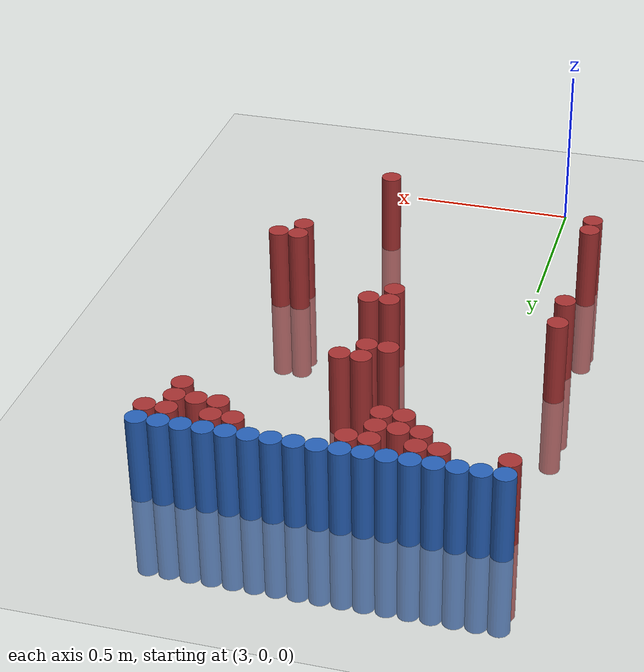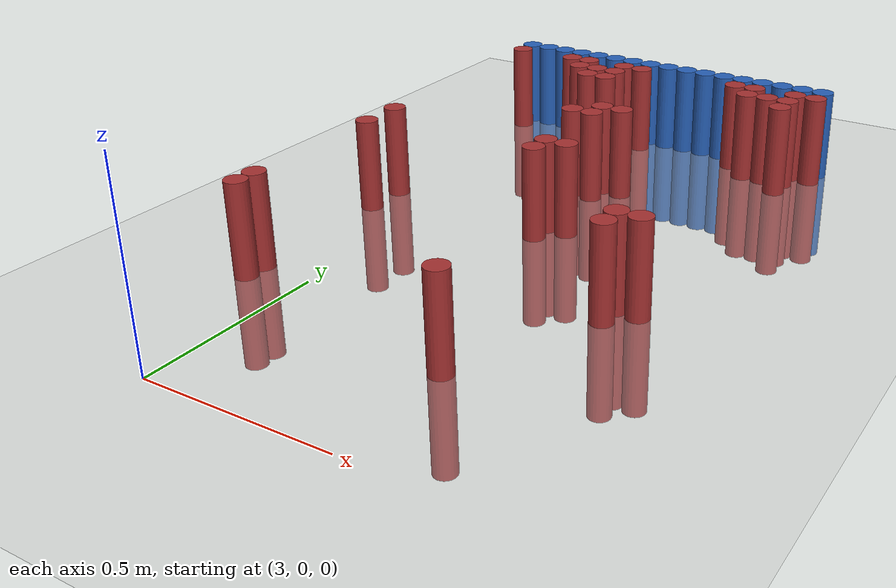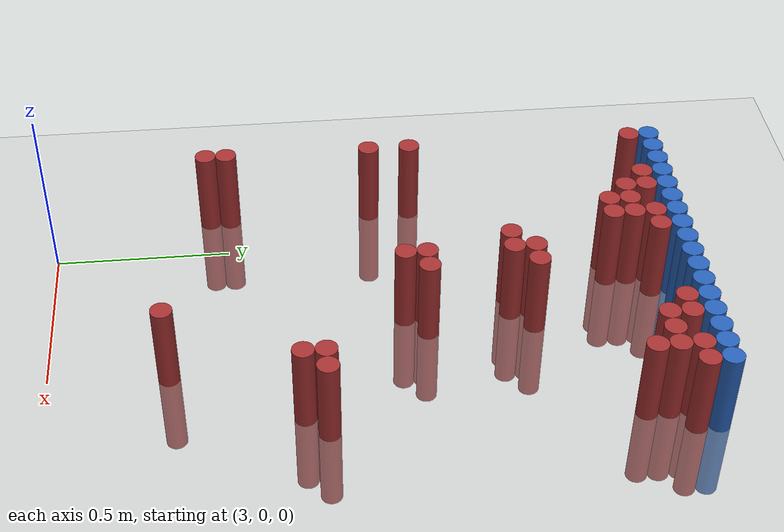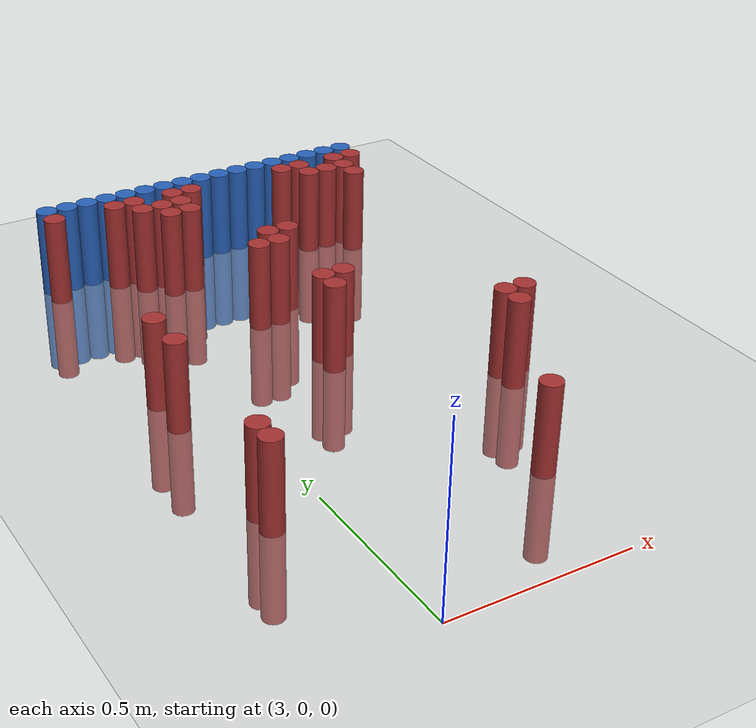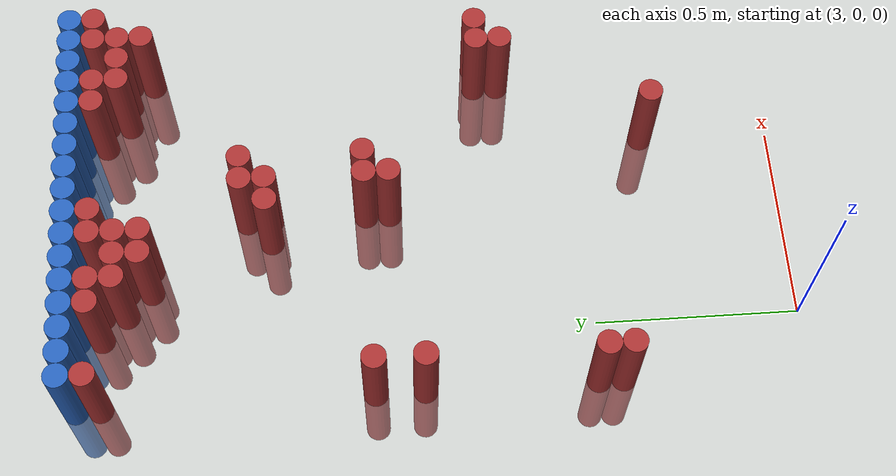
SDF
<sdf version="1.6">
 <world name="default">
  <model name="ground_plane">
   <static>1</static>
   <link name="link">
    <collision name="collision">
     <geometry><plane><normal>0 0 1</normal><size>100 100</size></plane></geometry>
     <surface><friction><ode><mu>100</mu><mu2>50</mu2></ode></friction></surface>
    </collision>
    <visual name="visual">
     <cast_shadows>0</cast_shadows>
     <geometry><plane><normal>0 0 1</normal><size>100 100</size></plane></geometry>
     <material>
      <script><uri>file://media/materials/scripts/gazebo.material</uri><name>Gazebo/Grey</name></script>
     </material>
    </visual>
   </link>
  </model>
  <model name="unit_cylinder_108">
   <static>1</static>
   <pose>2.850000 1.770000 0.000000 0.000000 0.000000 0.000000</pose>
   <link name="link">
    <inertial>
     <mass>1</mass>
     <inertia><ixx>0.145833</ixx><ixy>0</ixy><ixz>0</ixz><iyy>0.145833</iyy><iyz>0</iyz><izz>0.125</izz></inertia>
    </inertial>
    <collision name="collision">
     <geometry><cylinder><radius>0.030000</radius><length>0.5</length></cylinder></geometry>
    </collision>
    <visual name="visual">
     <geometry><cylinder><radius>0.030000</radius><length>0.5</length></cylinder></geometry>
     <material>
      <ambient>0.152000 0.379000 0.720000 1</ambient>
      <diffuse>0.152000 0.379000 0.720000 1</diffuse>
     </material>
     <material>
      <script><name>Gazebo/Grey</name><uri>file://media/materials/scripts/gazebo.material</uri></script>
     </material>
    </visual>
   </link>
  </model>
  <model name="unit_cylinder_109">
   <static>1</static>
   <pose>2.910000 1.770000 0.000000 0.000000 0.000000 0.000000</pose>
   <link name="link">
    <inertial>
     <mass>1</mass>
     <inertia><ixx>0.145833</ixx><ixy>0</ixy><ixz>0</ixz><iyy>0.145833</iyy><iyz>0</iyz><izz>0.125</izz></inertia>
    </inertial>
    <collision name="collision">
     <geometry><cylinder><radius>0.030000</radius><length>0.5</length></cylinder></geometry>
    </collision>
    <visual name="visual">
     <geometry><cylinder><radius>0.030000</radius><length>0.5</length></cylinder></geometry>
     <material>
      <ambient>0.152000 0.379000 0.720000 1</ambient>
      <diffuse>0.152000 0.379000 0.720000 1</diffuse>
     </material>
     <material>
      <script><name>Gazebo/Grey</name><uri>file://media/materials/scripts/gazebo.material</uri></script>
     </material>
    </visual>
   </link>
  </model>
  <model name="unit_cylinder_110">
   <static>1</static>
   <pose>2.970000 1.770000 0.000000 0.000000 0.000000 0.000000</pose>
   <link name="link">
    <inertial>
     <mass>1</mass>
     <inertia><ixx>0.145833</ixx><ixy>0</ixy><ixz>0</ixz><iyy>0.145833</iyy><iyz>0</iyz><izz>0.125</izz></inertia>
    </inertial>
    <collision name="collision">
     <geometry><cylinder><radius>0.030000</radius><length>0.5</length></cylinder></geometry>
    </collision>
    <visual name="visual">
     <geometry><cylinder><radius>0.030000</radius><length>0.5</length></cylinder></geometry>
     <material>
      <ambient>0.152000 0.379000 0.720000 1</ambient>
      <diffuse>0.152000 0.379000 0.720000 1</diffuse>
     </material>
     <material>
      <script><name>Gazebo/Grey</name><uri>file://media/materials/scripts/gazebo.material</uri></script>
     </material>
    </visual>
   </link>
  </model>
  <model name="unit_cylinder_111">
   <static>1</static>
   <pose>3.030000 1.770000 0.000000 0.000000 0.000000 0.000000</pose>
   <link name="link">
    <inertial>
     <mass>1</mass>
     <inertia><ixx>0.145833</ixx><ixy>0</ixy><ixz>0</ixz><iyy>0.145833</iyy><iyz>0</iyz><izz>0.125</izz></inertia>
    </inertial>
    <collision name="collision">
     <geometry><cylinder><radius>0.030000</radius><length>0.5</length></cylinder></geometry>
    </collision>
    <visual name="visual">
     <geometry><cylinder><radius>0.030000</radius><length>0.5</length></cylinder></geometry>
     <material>
      <ambient>0.152000 0.379000 0.720000 1</ambient>
      <diffuse>0.152000 0.379000 0.720000 1</diffuse>
     </material>
     <material>
      <script><name>Gazebo/Grey</name><uri>file://media/materials/scripts/gazebo.material</uri></script>
     </material>
    </visual>
   </link>
  </model>
  <model name="unit_cylinder_112">
   <static>1</static>
   <pose>3.090000 1.770000 0.000000 0.000000 0.000000 0.000000</pose>
   <link name="link">
    <inertial>
     <mass>1</mass>
     <inertia><ixx>0.145833</ixx><ixy>0</ixy><ixz>0</ixz><iyy>0.145833</iyy><iyz>0</iyz><izz>0.125</izz></inertia>
    </inertial>
    <collision name="collision">
     <geometry><cylinder><radius>0.030000</radius><length>0.5</length></cylinder></geometry>
    </collision>
    <visual name="visual">
     <geometry><cylinder><radius>0.030000</radius><length>0.5</length></cylinder></geometry>
     <material>
      <ambient>0.152000 0.379000 0.720000 1</ambient>
      <diffuse>0.152000 0.379000 0.720000 1</diffuse>
     </material>
     <material>
      <script><name>Gazebo/Grey</name><uri>file://media/materials/scripts/gazebo.material</uri></script>
     </material>
    </visual>
   </link>
  </model>
  <model name="unit_cylinder_113">
   <static>1</static>
   <pose>3.150000 1.770000 0.000000 0.000000 0.000000 0.000000</pose>
   <link name="link">
    <inertial>
     <mass>1</mass>
     <inertia><ixx>0.145833</ixx><ixy>0</ixy><ixz>0</ixz><iyy>0.145833</iyy><iyz>0</iyz><izz>0.125</izz></inertia>
    </inertial>
    <collision name="collision">
     <geometry><cylinder><radius>0.030000</radius><length>0.5</length></cylinder></geometry>
    </collision>
    <visual name="visual">
     <geometry><cylinder><radius>0.030000</radius><length>0.5</length></cylinder></geometry>
     <material>
      <ambient>0.152000 0.379000 0.720000 1</ambient>
      <diffuse>0.152000 0.379000 0.720000 1</diffuse>
     </material>
     <material>
      <script><name>Gazebo/Grey</name><uri>file://media/materials/scripts/gazebo.material</uri></script>
     </material>
    </visual>
   </link>
  </model>
  <model name="unit_cylinder_114">
   <static>1</static>
   <pose>3.210000 1.770000 0.000000 0.000000 0.000000 0.000000</pose>
   <link name="link">
    <inertial>
     <mass>1</mass>
     <inertia><ixx>0.145833</ixx><ixy>0</ixy><ixz>0</ixz><iyy>0.145833</iyy><iyz>0</iyz><izz>0.125</izz></inertia>
    </inertial>
    <collision name="collision">
     <geometry><cylinder><radius>0.030000</radius><length>0.5</length></cylinder></geometry>
    </collision>
    <visual name="visual">
     <geometry><cylinder><radius>0.030000</radius><length>0.5</length></cylinder></geometry>
     <material>
      <ambient>0.152000 0.379000 0.720000 1</ambient>
      <diffuse>0.152000 0.379000 0.720000 1</diffuse>
     </material>
     <material>
      <script><name>Gazebo/Grey</name><uri>file://media/materials/scripts/gazebo.material</uri></script>
     </material>
    </visual>
   </link>
  </model>
  <model name="unit_cylinder_115">
   <static>1</static>
   <pose>3.270000 1.770000 0.000000 0.000000 0.000000 0.000000</pose>
   <link name="link">
    <inertial>
     <mass>1</mass>
     <inertia><ixx>0.145833</ixx><ixy>0</ixy><ixz>0</ixz><iyy>0.145833</iyy><iyz>0</iyz><izz>0.125</izz></inertia>
    </inertial>
    <collision name="collision">
     <geometry><cylinder><radius>0.030000</radius><length>0.5</length></cylinder></geometry>
    </collision>
    <visual name="visual">
     <geometry><cylinder><radius>0.030000</radius><length>0.5</length></cylinder></geometry>
     <material>
      <ambient>0.152000 0.379000 0.720000 1</ambient>
      <diffuse>0.152000 0.379000 0.720000 1</diffuse>
     </material>
     <material>
      <script><name>Gazebo/Grey</name><uri>file://media/materials/scripts/gazebo.material</uri></script>
     </material>
    </visual>
   </link>
  </model>
  <model name="unit_cylinder_116">
   <static>1</static>
   <pose>3.330000 1.770000 0.000000 0.000000 0.000000 0.000000</pose>
   <link name="link">
    <inertial>
     <mass>1</mass>
     <inertia><ixx>0.145833</ixx><ixy>0</ixy><ixz>0</ixz><iyy>0.145833</iyy><iyz>0</iyz><izz>0.125</izz></inertia>
    </inertial>
    <collision name="collision">
     <geometry><cylinder><radius>0.030000</radius><length>0.5</length></cylinder></geometry>
    </collision>
    <visual name="visual">
     <geometry><cylinder><radius>0.030000</radius><length>0.5</length></cylinder></geometry>
     <material>
      <ambient>0.152000 0.379000 0.720000 1</ambient>
      <diffuse>0.152000 0.379000 0.720000 1</diffuse>
     </material>
     <material>
      <script><name>Gazebo/Grey</name><uri>file://media/materials/scripts/gazebo.material</uri></script>
     </material>
    </visual>
   </link>
  </model>
  <model name="unit_cylinder_117">
   <static>1</static>
   <pose>3.390000 1.770000 0.000000 0.000000 0.000000 0.000000</pose>
   <link name="link">
    <inertial>
     <mass>1</mass>
     <inertia><ixx>0.145833</ixx><ixy>0</ixy><ixz>0</ixz><iyy>0.145833</iyy><iyz>0</iyz><izz>0.125</izz></inertia>
    </inertial>
    <collision name="collision">
     <geometry><cylinder><radius>0.030000</radius><length>0.5</length></cylinder></geometry>
    </collision>
    <visual name="visual">
     <geometry><cylinder><radius>0.030000</radius><length>0.5</length></cylinder></geometry>
     <material>
      <ambient>0.152000 0.379000 0.720000 1</ambient>
      <diffuse>0.152000 0.379000 0.720000 1</diffuse>
     </material>
     <material>
      <script><name>Gazebo/Grey</name><uri>file://media/materials/scripts/gazebo.material</uri></script>
     </material>
    </visual>
   </link>
  </model>
  <model name="unit_cylinder_118">
   <static>1</static>
   <pose>3.450000 1.770000 0.000000 0.000000 0.000000 0.000000</pose>
   <link name="link">
    <inertial>
     <mass>1</mass>
     <inertia><ixx>0.145833</ixx><ixy>0</ixy><ixz>0</ixz><iyy>0.145833</iyy><iyz>0</iyz><izz>0.125</izz></inertia>
    </inertial>
    <collision name="collision">
     <geometry><cylinder><radius>0.030000</radius><length>0.5</length></cylinder></geometry>
    </collision>
    <visual name="visual">
     <geometry><cylinder><radius>0.030000</radius><length>0.5</length></cylinder></geometry>
     <material>
      <ambient>0.152000 0.379000 0.720000 1</ambient>
      <diffuse>0.152000 0.379000 0.720000 1</diffuse>
     </material>
     <material>
      <script><name>Gazebo/Grey</name><uri>file://media/materials/scripts/gazebo.material</uri></script>
     </material>
    </visual>
   </link>
  </model>
  <model name="unit_cylinder_119">
   <static>1</static>
   <pose>3.510000 1.770000 0.000000 0.000000 0.000000 0.000000</pose>
   <link name="link">
    <inertial>
     <mass>1</mass>
     <inertia><ixx>0.145833</ixx><ixy>0</ixy><ixz>0</ixz><iyy>0.145833</iyy><iyz>0</iyz><izz>0.125</izz></inertia>
    </inertial>
    <collision name="collision">
     <geometry><cylinder><radius>0.030000</radius><length>0.5</length></cylinder></geometry>
    </collision>
    <visual name="visual">
     <geometry><cylinder><radius>0.030000</radius><length>0.5</length></cylinder></geometry>
     <material>
      <ambient>0.152000 0.379000 0.720000 1</ambient>
      <diffuse>0.152000 0.379000 0.720000 1</diffuse>
     </material>
     <material>
      <script><name>Gazebo/Grey</name><uri>file://media/materials/scripts/gazebo.material</uri></script>
     </material>
    </visual>
   </link>
  </model>
  <model name="unit_cylinder_120">
   <static>1</static>
   <pose>3.570000 1.770000 0.000000 0.000000 0.000000 0.000000</pose>
   <link name="link">
    <inertial>
     <mass>1</mass>
     <inertia><ixx>0.145833</ixx><ixy>0</ixy><ixz>0</ixz><iyy>0.145833</iyy><iyz>0</iyz><izz>0.125</izz></inertia>
    </inertial>
    <collision name="collision">
     <geometry><cylinder><radius>0.030000</radius><length>0.5</length></cylinder></geometry>
    </collision>
    <visual name="visual">
     <geometry><cylinder><radius>0.030000</radius><length>0.5</length></cylinder></geometry>
     <material>
      <ambient>0.152000 0.379000 0.720000 1</ambient>
      <diffuse>0.152000 0.379000 0.720000 1</diffuse>
     </material>
     <material>
      <script><name>Gazebo/Grey</name><uri>file://media/materials/scripts/gazebo.material</uri></script>
     </material>
    </visual>
   </link>
  </model>
  <model name="unit_cylinder_121">
   <static>1</static>
   <pose>3.630000 1.770000 0.000000 0.000000 0.000000 0.000000</pose>
   <link name="link">
    <inertial>
     <mass>1</mass>
     <inertia><ixx>0.145833</ixx><ixy>0</ixy><ixz>0</ixz><iyy>0.145833</iyy><iyz>0</iyz><izz>0.125</izz></inertia>
    </inertial>
    <collision name="collision">
     <geometry><cylinder><radius>0.030000</radius><length>0.5</length></cylinder></geometry>
    </collision>
    <visual name="visual">
     <geometry><cylinder><radius>0.030000</radius><length>0.5</length></cylinder></geometry>
     <material>
      <ambient>0.152000 0.379000 0.720000 1</ambient>
      <diffuse>0.152000 0.379000 0.720000 1</diffuse>
     </material>
     <material>
      <script><name>Gazebo/Grey</name><uri>file://media/materials/scripts/gazebo.material</uri></script>
     </material>
    </visual>
   </link>
  </model>
  <model name="unit_cylinder_122">
   <static>1</static>
   <pose>3.690000 1.770000 0.000000 0.000000 0.000000 0.000000</pose>
   <link name="link">
    <inertial>
     <mass>1</mass>
     <inertia><ixx>0.145833</ixx><ixy>0</ixy><ixz>0</ixz><iyy>0.145833</iyy><iyz>0</iyz><izz>0.125</izz></inertia>
    </inertial>
    <collision name="collision">
     <geometry><cylinder><radius>0.030000</radius><length>0.5</length></cylinder></geometry>
    </collision>
    <visual name="visual">
     <geometry><cylinder><radius>0.030000</radius><length>0.5</length></cylinder></geometry>
     <material>
      <ambient>0.152000 0.379000 0.720000 1</ambient>
      <diffuse>0.152000 0.379000 0.720000 1</diffuse>
     </material>
     <material>
      <script><name>Gazebo/Grey</name><uri>file://media/materials/scripts/gazebo.material</uri></script>
     </material>
    </visual>
   </link>
  </model>
  <model name="unit_cylinder_123">
   <static>1</static>
   <pose>3.750000 1.770000 0.000000 0.000000 0.000000 0.000000</pose>
   <link name="link">
    <inertial>
     <mass>1</mass>
     <inertia><ixx>0.145833</ixx><ixy>0</ixy><ixz>0</ixz><iyy>0.145833</iyy><iyz>0</iyz><izz>0.125</izz></inertia>
    </inertial>
    <collision name="collision">
     <geometry><cylinder><radius>0.030000</radius><length>0.5</length></cylinder></geometry>
    </collision>
    <visual name="visual">
     <geometry><cylinder><radius>0.030000</radius><length>0.5</length></cylinder></geometry>
     <material>
      <ambient>0.152000 0.379000 0.720000 1</ambient>
      <diffuse>0.152000 0.379000 0.720000 1</diffuse>
     </material>
     <material>
      <script><name>Gazebo/Grey</name><uri>file://media/materials/scripts/gazebo.material</uri></script>
     </material>
    </visual>
   </link>
  </model>
  <model name="unit_cylinder_124">
   <static>1</static>
   <pose>3.810000 1.770000 0.000000 0.000000 0.000000 0.000000</pose>
   <link name="link">
    <inertial>
     <mass>1</mass>
     <inertia><ixx>0.145833</ixx><ixy>0</ixy><ixz>0</ixz><iyy>0.145833</iyy><iyz>0</iyz><izz>0.125</izz></inertia>
    </inertial>
    <collision name="collision">
     <geometry><cylinder><radius>0.030000</radius><length>0.5</length></cylinder></geometry>
    </collision>
    <visual name="visual">
     <geometry><cylinder><radius>0.030000</radius><length>0.5</length></cylinder></geometry>
     <material>
      <ambient>0.152000 0.379000 0.720000 1</ambient>
      <diffuse>0.152000 0.379000 0.720000 1</diffuse>
     </material>
     <material>
      <script><name>Gazebo/Grey</name><uri>file://media/materials/scripts/gazebo.material</uri></script>
     </material>
    </visual>
   </link>
  </model>
  <model name="unit_cylinder_132">
   <static>1</static>
   <pose>2.850000 1.710000 0.000000 0.000000 0.000000 0.000000</pose>
   <link name="link">
    <inertial>
     <mass>1</mass>
     <inertia><ixx>0.145833</ixx><ixy>0</ixy><ixz>0</ixz><iyy>0.145833</iyy><iyz>0</iyz><izz>0.125</izz></inertia>
    </inertial>
    <collision name="collision">
     <geometry><cylinder><radius>0.030000</radius><length>0.5</length></cylinder></geometry>
    </collision>
    <visual name="visual">
     <geometry><cylinder><radius>0.030000</radius><length>0.5</length></cylinder></geometry>
     <material>
      <ambient>0.648000 0.192000 0.192000 1</ambient>
      <diffuse>0.648000 0.192000 0.192000 1</diffuse>
     </material>
     <material>
      <script><name>Gazebo/Grey</name><uri>file://media/materials/scripts/gazebo.material</uri></script>
     </material>
    </visual>
   </link>
  </model>
  <model name="unit_cylinder_133">
   <static>1</static>
   <pose>3.030000 1.710000 0.000000 0.000000 0.000000 0.000000</pose>
   <link name="link">
    <inertial>
     <mass>1</mass>
     <inertia><ixx>0.145833</ixx><ixy>0</ixy><ixz>0</ixz><iyy>0.145833</iyy><iyz>0</iyz><izz>0.125</izz></inertia>
    </inertial>
    <collision name="collision">
     <geometry><cylinder><radius>0.030000</radius><length>0.5</length></cylinder></geometry>
    </collision>
    <visual name="visual">
     <geometry><cylinder><radius>0.030000</radius><length>0.5</length></cylinder></geometry>
     <material>
      <ambient>0.648000 0.192000 0.192000 1</ambient>
      <diffuse>0.648000 0.192000 0.192000 1</diffuse>
     </material>
     <material>
      <script><name>Gazebo/Grey</name><uri>file://media/materials/scripts/gazebo.material</uri></script>
     </material>
    </visual>
   </link>
  </model>
  <model name="unit_cylinder_134">
   <static>1</static>
   <pose>3.090000 1.710000 0.000000 0.000000 0.000000 0.000000</pose>
   <link name="link">
    <inertial>
     <mass>1</mass>
     <inertia><ixx>0.145833</ixx><ixy>0</ixy><ixz>0</ixz><iyy>0.145833</iyy><iyz>0</iyz><izz>0.125</izz></inertia>
    </inertial>
    <collision name="collision">
     <geometry><cylinder><radius>0.030000</radius><length>0.5</length></cylinder></geometry>
    </collision>
    <visual name="visual">
     <geometry><cylinder><radius>0.030000</radius><length>0.5</length></cylinder></geometry>
     <material>
      <ambient>0.648000 0.192000 0.192000 1</ambient>
      <diffuse>0.648000 0.192000 0.192000 1</diffuse>
     </material>
     <material>
      <script><name>Gazebo/Grey</name><uri>file://media/materials/scripts/gazebo.material</uri></script>
     </material>
    </visual>
   </link>
  </model>
  <model name="unit_cylinder_135">
   <static>1</static>
   <pose>3.210000 1.710000 0.000000 0.000000 0.000000 0.000000</pose>
   <link name="link">
    <inertial>
     <mass>1</mass>
     <inertia><ixx>0.145833</ixx><ixy>0</ixy><ixz>0</ixz><iyy>0.145833</iyy><iyz>0</iyz><izz>0.125</izz></inertia>
    </inertial>
    <collision name="collision">
     <geometry><cylinder><radius>0.030000</radius><length>0.5</length></cylinder></geometry>
    </collision>
    <visual name="visual">
     <geometry><cylinder><radius>0.030000</radius><length>0.5</length></cylinder></geometry>
     <material>
      <ambient>0.648000 0.192000 0.192000 1</ambient>
      <diffuse>0.648000 0.192000 0.192000 1</diffuse>
     </material>
     <material>
      <script><name>Gazebo/Grey</name><uri>file://media/materials/scripts/gazebo.material</uri></script>
     </material>
    </visual>
   </link>
  </model>
  <model name="unit_cylinder_136">
   <static>1</static>
   <pose>3.270000 1.710000 0.000000 0.000000 0.000000 0.000000</pose>
   <link name="link">
    <inertial>
     <mass>1</mass>
     <inertia><ixx>0.145833</ixx><ixy>0</ixy><ixz>0</ixz><iyy>0.145833</iyy><iyz>0</iyz><izz>0.125</izz></inertia>
    </inertial>
    <collision name="collision">
     <geometry><cylinder><radius>0.030000</radius><length>0.5</length></cylinder></geometry>
    </collision>
    <visual name="visual">
     <geometry><cylinder><radius>0.030000</radius><length>0.5</length></cylinder></geometry>
     <material>
      <ambient>0.648000 0.192000 0.192000 1</ambient>
      <diffuse>0.648000 0.192000 0.192000 1</diffuse>
     </material>
     <material>
      <script><name>Gazebo/Grey</name><uri>file://media/materials/scripts/gazebo.material</uri></script>
     </material>
    </visual>
   </link>
  </model>
  <model name="unit_cylinder_137">
   <static>1</static>
   <pose>3.570000 1.710000 0.000000 0.000000 0.000000 0.000000</pose>
   <link name="link">
    <inertial>
     <mass>1</mass>
     <inertia><ixx>0.145833</ixx><ixy>0</ixy><ixz>0</ixz><iyy>0.145833</iyy><iyz>0</iyz><izz>0.125</izz></inertia>
    </inertial>
    <collision name="collision">
     <geometry><cylinder><radius>0.030000</radius><length>0.5</length></cylinder></geometry>
    </collision>
    <visual name="visual">
     <geometry><cylinder><radius>0.030000</radius><length>0.5</length></cylinder></geometry>
     <material>
      <ambient>0.648000 0.192000 0.192000 1</ambient>
      <diffuse>0.648000 0.192000 0.192000 1</diffuse>
     </material>
     <material>
      <script><name>Gazebo/Grey</name><uri>file://media/materials/scripts/gazebo.material</uri></script>
     </material>
    </visual>
   </link>
  </model>
  <model name="unit_cylinder_138">
   <static>1</static>
   <pose>3.630000 1.710000 0.000000 0.000000 0.000000 0.000000</pose>
   <link name="link">
    <inertial>
     <mass>1</mass>
     <inertia><ixx>0.145833</ixx><ixy>0</ixy><ixz>0</ixz><iyy>0.145833</iyy><iyz>0</iyz><izz>0.125</izz></inertia>
    </inertial>
    <collision name="collision">
     <geometry><cylinder><radius>0.030000</radius><length>0.5</length></cylinder></geometry>
    </collision>
    <visual name="visual">
     <geometry><cylinder><radius>0.030000</radius><length>0.5</length></cylinder></geometry>
     <material>
      <ambient>0.648000 0.192000 0.192000 1</ambient>
      <diffuse>0.648000 0.192000 0.192000 1</diffuse>
     </material>
     <material>
      <script><name>Gazebo/Grey</name><uri>file://media/materials/scripts/gazebo.material</uri></script>
     </material>
    </visual>
   </link>
  </model>
  <model name="unit_cylinder_139">
   <static>1</static>
   <pose>3.750000 1.710000 0.000000 0.000000 0.000000 0.000000</pose>
   <link name="link">
    <inertial>
     <mass>1</mass>
     <inertia><ixx>0.145833</ixx><ixy>0</ixy><ixz>0</ixz><iyy>0.145833</iyy><iyz>0</iyz><izz>0.125</izz></inertia>
    </inertial>
    <collision name="collision">
     <geometry><cylinder><radius>0.030000</radius><length>0.5</length></cylinder></geometry>
    </collision>
    <visual name="visual">
     <geometry><cylinder><radius>0.030000</radius><length>0.5</length></cylinder></geometry>
     <material>
      <ambient>0.648000 0.192000 0.192000 1</ambient>
      <diffuse>0.648000 0.192000 0.192000 1</diffuse>
     </material>
     <material>
      <script><name>Gazebo/Grey</name><uri>file://media/materials/scripts/gazebo.material</uri></script>
     </material>
    </visual>
   </link>
  </model>
  <model name="unit_cylinder_140">
   <static>1</static>
   <pose>3.810000 1.710000 0.000000 0.000000 0.000000 0.000000</pose>
   <link name="link">
    <inertial>
     <mass>1</mass>
     <inertia><ixx>0.145833</ixx><ixy>0</ixy><ixz>0</ixz><iyy>0.145833</iyy><iyz>0</iyz><izz>0.125</izz></inertia>
    </inertial>
    <collision name="collision">
     <geometry><cylinder><radius>0.030000</radius><length>0.5</length></cylinder></geometry>
    </collision>
    <visual name="visual">
     <geometry><cylinder><radius>0.030000</radius><length>0.5</length></cylinder></geometry>
     <material>
      <ambient>0.648000 0.192000 0.192000 1</ambient>
      <diffuse>0.648000 0.192000 0.192000 1</diffuse>
     </material>
     <material>
      <script><name>Gazebo/Grey</name><uri>file://media/materials/scripts/gazebo.material</uri></script>
     </material>
    </visual>
   </link>
  </model>
  <model name="unit_cylinder_143">
   <static>1</static>
   <pose>3.090000 1.650000 0.000000 0.000000 0.000000 0.000000</pose>
   <link name="link">
    <inertial>
     <mass>1</mass>
     <inertia><ixx>0.145833</ixx><ixy>0</ixy><ixz>0</ixz><iyy>0.145833</iyy><iyz>0</iyz><izz>0.125</izz></inertia>
    </inertial>
    <collision name="collision">
     <geometry><cylinder><radius>0.030000</radius><length>0.5</length></cylinder></geometry>
    </collision>
    <visual name="visual">
     <geometry><cylinder><radius>0.030000</radius><length>0.5</length></cylinder></geometry>
     <material>
      <ambient>0.648000 0.192000 0.192000 1</ambient>
      <diffuse>0.648000 0.192000 0.192000 1</diffuse>
     </material>
     <material>
      <script><name>Gazebo/Grey</name><uri>file://media/materials/scripts/gazebo.material</uri></script>
     </material>
    </visual>
   </link>
  </model>
  <model name="unit_cylinder_144">
   <static>1</static>
   <pose>3.150000 1.650000 0.000000 0.000000 0.000000 0.000000</pose>
   <link name="link">
    <inertial>
     <mass>1</mass>
     <inertia><ixx>0.145833</ixx><ixy>0</ixy><ixz>0</ixz><iyy>0.145833</iyy><iyz>0</iyz><izz>0.125</izz></inertia>
    </inertial>
    <collision name="collision">
     <geometry><cylinder><radius>0.030000</radius><length>0.5</length></cylinder></geometry>
    </collision>
    <visual name="visual">
     <geometry><cylinder><radius>0.030000</radius><length>0.5</length></cylinder></geometry>
     <material>
      <ambient>0.648000 0.192000 0.192000 1</ambient>
      <diffuse>0.648000 0.192000 0.192000 1</diffuse>
     </material>
     <material>
      <script><name>Gazebo/Grey</name><uri>file://media/materials/scripts/gazebo.material</uri></script>
     </material>
    </visual>
   </link>
  </model>
  <model name="unit_cylinder_145">
   <static>1</static>
   <pose>3.210000 1.650000 0.000000 0.000000 0.000000 0.000000</pose>
   <link name="link">
    <inertial>
     <mass>1</mass>
     <inertia><ixx>0.145833</ixx><ixy>0</ixy><ixz>0</ixz><iyy>0.145833</iyy><iyz>0</iyz><izz>0.125</izz></inertia>
    </inertial>
    <collision name="collision">
     <geometry><cylinder><radius>0.030000</radius><length>0.5</length></cylinder></geometry>
    </collision>
    <visual name="visual">
     <geometry><cylinder><radius>0.030000</radius><length>0.5</length></cylinder></geometry>
     <material>
      <ambient>0.648000 0.192000 0.192000 1</ambient>
      <diffuse>0.648000 0.192000 0.192000 1</diffuse>
     </material>
     <material>
      <script><name>Gazebo/Grey</name><uri>file://media/materials/scripts/gazebo.material</uri></script>
     </material>
    </visual>
   </link>
  </model>
  <model name="unit_cylinder_146">
   <static>1</static>
   <pose>3.630000 1.650000 0.000000 0.000000 0.000000 0.000000</pose>
   <link name="link">
    <inertial>
     <mass>1</mass>
     <inertia><ixx>0.145833</ixx><ixy>0</ixy><ixz>0</ixz><iyy>0.145833</iyy><iyz>0</iyz><izz>0.125</izz></inertia>
    </inertial>
    <collision name="collision">
     <geometry><cylinder><radius>0.030000</radius><length>0.5</length></cylinder></geometry>
    </collision>
    <visual name="visual">
     <geometry><cylinder><radius>0.030000</radius><length>0.5</length></cylinder></geometry>
     <material>
      <ambient>0.648000 0.192000 0.192000 1</ambient>
      <diffuse>0.648000 0.192000 0.192000 1</diffuse>
     </material>
     <material>
      <script><name>Gazebo/Grey</name><uri>file://media/materials/scripts/gazebo.material</uri></script>
     </material>
    </visual>
   </link>
  </model>
  <model name="unit_cylinder_147">
   <static>1</static>
   <pose>3.690000 1.650000 0.000000 0.000000 0.000000 0.000000</pose>
   <link name="link">
    <inertial>
     <mass>1</mass>
     <inertia><ixx>0.145833</ixx><ixy>0</ixy><ixz>0</ixz><iyy>0.145833</iyy><iyz>0</iyz><izz>0.125</izz></inertia>
    </inertial>
    <collision name="collision">
     <geometry><cylinder><radius>0.030000</radius><length>0.5</length></cylinder></geometry>
    </collision>
    <visual name="visual">
     <geometry><cylinder><radius>0.030000</radius><length>0.5</length></cylinder></geometry>
     <material>
      <ambient>0.648000 0.192000 0.192000 1</ambient>
      <diffuse>0.648000 0.192000 0.192000 1</diffuse>
     </material>
     <material>
      <script><name>Gazebo/Grey</name><uri>file://media/materials/scripts/gazebo.material</uri></script>
     </material>
    </visual>
   </link>
  </model>
  <model name="unit_cylinder_148">
   <static>1</static>
   <pose>3.750000 1.650000 0.000000 0.000000 0.000000 0.000000</pose>
   <link name="link">
    <inertial>
     <mass>1</mass>
     <inertia><ixx>0.145833</ixx><ixy>0</ixy><ixz>0</ixz><iyy>0.145833</iyy><iyz>0</iyz><izz>0.125</izz></inertia>
    </inertial>
    <collision name="collision">
     <geometry><cylinder><radius>0.030000</radius><length>0.5</length></cylinder></geometry>
    </collision>
    <visual name="visual">
     <geometry><cylinder><radius>0.030000</radius><length>0.5</length></cylinder></geometry>
     <material>
      <ambient>0.648000 0.192000 0.192000 1</ambient>
      <diffuse>0.648000 0.192000 0.192000 1</diffuse>
     </material>
     <material>
      <script><name>Gazebo/Grey</name><uri>file://media/materials/scripts/gazebo.material</uri></script>
     </material>
    </visual>
   </link>
  </model>
  <model name="unit_cylinder_150">
   <static>1</static>
   <pose>3.150000 1.590000 0.000000 0.000000 0.000000 0.000000</pose>
   <link name="link">
    <inertial>
     <mass>1</mass>
     <inertia><ixx>0.145833</ixx><ixy>0</ixy><ixz>0</ixz><iyy>0.145833</iyy><iyz>0</iyz><izz>0.125</izz></inertia>
    </inertial>
    <collision name="collision">
     <geometry><cylinder><radius>0.030000</radius><length>0.5</length></cylinder></geometry>
    </collision>
    <visual name="visual">
     <geometry><cylinder><radius>0.030000</radius><length>0.5</length></cylinder></geometry>
     <material>
      <ambient>0.648000 0.192000 0.192000 1</ambient>
      <diffuse>0.648000 0.192000 0.192000 1</diffuse>
     </material>
     <material>
      <script><name>Gazebo/Grey</name><uri>file://media/materials/scripts/gazebo.material</uri></script>
     </material>
    </visual>
   </link>
  </model>
  <model name="unit_cylinder_151">
   <static>1</static>
   <pose>3.210000 1.590000 0.000000 0.000000 0.000000 0.000000</pose>
   <link name="link">
    <inertial>
     <mass>1</mass>
     <inertia><ixx>0.145833</ixx><ixy>0</ixy><ixz>0</ixz><iyy>0.145833</iyy><iyz>0</iyz><izz>0.125</izz></inertia>
    </inertial>
    <collision name="collision">
     <geometry><cylinder><radius>0.030000</radius><length>0.5</length></cylinder></geometry>
    </collision>
    <visual name="visual">
     <geometry><cylinder><radius>0.030000</radius><length>0.5</length></cylinder></geometry>
     <material>
      <ambient>0.648000 0.192000 0.192000 1</ambient>
      <diffuse>0.648000 0.192000 0.192000 1</diffuse>
     </material>
     <material>
      <script><name>Gazebo/Grey</name><uri>file://media/materials/scripts/gazebo.material</uri></script>
     </material>
    </visual>
   </link>
  </model>
  <model name="unit_cylinder_152">
   <static>1</static>
   <pose>3.750000 1.590000 0.000000 0.000000 0.000000 0.000000</pose>
   <link name="link">
    <inertial>
     <mass>1</mass>
     <inertia><ixx>0.145833</ixx><ixy>0</ixy><ixz>0</ixz><iyy>0.145833</iyy><iyz>0</iyz><izz>0.125</izz></inertia>
    </inertial>
    <collision name="collision">
     <geometry><cylinder><radius>0.030000</radius><length>0.5</length></cylinder></geometry>
    </collision>
    <visual name="visual">
     <geometry><cylinder><radius>0.030000</radius><length>0.5</length></cylinder></geometry>
     <material>
      <ambient>0.648000 0.192000 0.192000 1</ambient>
      <diffuse>0.648000 0.192000 0.192000 1</diffuse>
     </material>
     <material>
      <script><name>Gazebo/Grey</name><uri>file://media/materials/scripts/gazebo.material</uri></script>
     </material>
    </visual>
   </link>
  </model>
  <model name="unit_cylinder_156">
   <static>1</static>
   <pose>3.330000 1.350000 0.000000 0.000000 0.000000 0.000000</pose>
   <link name="link">
    <inertial>
     <mass>1</mass>
     <inertia><ixx>0.145833</ixx><ixy>0</ixy><ixz>0</ixz><iyy>0.145833</iyy><iyz>0</iyz><izz>0.125</izz></inertia>
    </inertial>
    <collision name="collision">
     <geometry><cylinder><radius>0.030000</radius><length>0.5</length></cylinder></geometry>
    </collision>
    <visual name="visual">
     <geometry><cylinder><radius>0.030000</radius><length>0.5</length></cylinder></geometry>
     <material>
      <ambient>0.648000 0.192000 0.192000 1</ambient>
      <diffuse>0.648000 0.192000 0.192000 1</diffuse>
     </material>
     <material>
      <script><name>Gazebo/Grey</name><uri>file://media/materials/scripts/gazebo.material</uri></script>
     </material>
    </visual>
   </link>
  </model>
  <model name="unit_cylinder_157">
   <static>1</static>
   <pose>3.390000 1.350000 0.000000 0.000000 0.000000 0.000000</pose>
   <link name="link">
    <inertial>
     <mass>1</mass>
     <inertia><ixx>0.145833</ixx><ixy>0</ixy><ixz>0</ixz><iyy>0.145833</iyy><iyz>0</iyz><izz>0.125</izz></inertia>
    </inertial>
    <collision name="collision">
     <geometry><cylinder><radius>0.030000</radius><length>0.5</length></cylinder></geometry>
    </collision>
    <visual name="visual">
     <geometry><cylinder><radius>0.030000</radius><length>0.5</length></cylinder></geometry>
     <material>
      <ambient>0.648000 0.192000 0.192000 1</ambient>
      <diffuse>0.648000 0.192000 0.192000 1</diffuse>
     </material>
     <material>
      <script><name>Gazebo/Grey</name><uri>file://media/materials/scripts/gazebo.material</uri></script>
     </material>
    </visual>
   </link>
  </model>
  <model name="unit_cylinder_158">
   <static>1</static>
   <pose>3.270000 1.290000 0.000000 0.000000 0.000000 0.000000</pose>
   <link name="link">
    <inertial>
     <mass>1</mass>
     <inertia><ixx>0.145833</ixx><ixy>0</ixy><ixz>0</ixz><iyy>0.145833</iyy><iyz>0</iyz><izz>0.125</izz></inertia>
    </inertial>
    <collision name="collision">
     <geometry><cylinder><radius>0.030000</radius><length>0.5</length></cylinder></geometry>
    </collision>
    <visual name="visual">
     <geometry><cylinder><radius>0.030000</radius><length>0.5</length></cylinder></geometry>
     <material>
      <ambient>0.648000 0.192000 0.192000 1</ambient>
      <diffuse>0.648000 0.192000 0.192000 1</diffuse>
     </material>
     <material>
      <script><name>Gazebo/Grey</name><uri>file://media/materials/scripts/gazebo.material</uri></script>
     </material>
    </visual>
   </link>
  </model>
  <model name="unit_cylinder_159">
   <static>1</static>
   <pose>3.330000 1.290000 0.000000 0.000000 0.000000 0.000000</pose>
   <link name="link">
    <inertial>
     <mass>1</mass>
     <inertia><ixx>0.145833</ixx><ixy>0</ixy><ixz>0</ixz><iyy>0.145833</iyy><iyz>0</iyz><izz>0.125</izz></inertia>
    </inertial>
    <collision name="collision">
     <geometry><cylinder><radius>0.030000</radius><length>0.5</length></cylinder></geometry>
    </collision>
    <visual name="visual">
     <geometry><cylinder><radius>0.030000</radius><length>0.5</length></cylinder></geometry>
     <material>
      <ambient>0.648000 0.192000 0.192000 1</ambient>
      <diffuse>0.648000 0.192000 0.192000 1</diffuse>
     </material>
     <material>
      <script><name>Gazebo/Grey</name><uri>file://media/materials/scripts/gazebo.material</uri></script>
     </material>
    </visual>
   </link>
  </model>
  <model name="unit_cylinder_166">
   <static>1</static>
   <pose>2.850000 1.050000 0.000000 0.000000 0.000000 0.000000</pose>
   <link name="link">
    <inertial>
     <mass>1</mass>
     <inertia><ixx>0.145833</ixx><ixy>0</ixy><ixz>0</ixz><iyy>0.145833</iyy><iyz>0</iyz><izz>0.125</izz></inertia>
    </inertial>
    <collision name="collision">
     <geometry><cylinder><radius>0.030000</radius><length>0.5</length></cylinder></geometry>
    </collision>
    <visual name="visual">
     <geometry><cylinder><radius>0.030000</radius><length>0.5</length></cylinder></geometry>
     <material>
      <ambient>0.648000 0.192000 0.192000 1</ambient>
      <diffuse>0.648000 0.192000 0.192000 1</diffuse>
     </material>
     <material>
      <script><name>Gazebo/Grey</name><uri>file://media/materials/scripts/gazebo.material</uri></script>
     </material>
    </visual>
   </link>
  </model>
  <model name="unit_cylinder_167">
   <static>1</static>
   <pose>3.330000 1.050000 0.000000 0.000000 0.000000 0.000000</pose>
   <link name="link">
    <inertial>
     <mass>1</mass>
     <inertia><ixx>0.145833</ixx><ixy>0</ixy><ixz>0</ixz><iyy>0.145833</iyy><iyz>0</iyz><izz>0.125</izz></inertia>
    </inertial>
    <collision name="collision">
     <geometry><cylinder><radius>0.030000</radius><length>0.5</length></cylinder></geometry>
    </collision>
    <visual name="visual">
     <geometry><cylinder><radius>0.030000</radius><length>0.5</length></cylinder></geometry>
     <material>
      <ambient>0.648000 0.192000 0.192000 1</ambient>
      <diffuse>0.648000 0.192000 0.192000 1</diffuse>
     </material>
     <material>
      <script><name>Gazebo/Grey</name><uri>file://media/materials/scripts/gazebo.material</uri></script>
     </material>
    </visual>
   </link>
  </model>
  <model name="unit_cylinder_168">
   <static>1</static>
   <pose>3.390000 1.050000 0.000000 0.000000 0.000000 0.000000</pose>
   <link name="link">
    <inertial>
     <mass>1</mass>
     <inertia><ixx>0.145833</ixx><ixy>0</ixy><ixz>0</ixz><iyy>0.145833</iyy><iyz>0</iyz><izz>0.125</izz></inertia>
    </inertial>
    <collision name="collision">
     <geometry><cylinder><radius>0.030000</radius><length>0.5</length></cylinder></geometry>
    </collision>
    <visual name="visual">
     <geometry><cylinder><radius>0.030000</radius><length>0.5</length></cylinder></geometry>
     <material>
      <ambient>0.648000 0.192000 0.192000 1</ambient>
      <diffuse>0.648000 0.192000 0.192000 1</diffuse>
     </material>
     <material>
      <script><name>Gazebo/Grey</name><uri>file://media/materials/scripts/gazebo.material</uri></script>
     </material>
    </visual>
   </link>
  </model>
  <model name="unit_cylinder_170">
   <static>1</static>
   <pose>3.330000 0.990000 0.000000 0.000000 0.000000 0.000000</pose>
   <link name="link">
    <inertial>
     <mass>1</mass>
     <inertia><ixx>0.145833</ixx><ixy>0</ixy><ixz>0</ixz><iyy>0.145833</iyy><iyz>0</iyz><izz>0.125</izz></inertia>
    </inertial>
    <collision name="collision">
     <geometry><cylinder><radius>0.030000</radius><length>0.5</length></cylinder></geometry>
    </collision>
    <visual name="visual">
     <geometry><cylinder><radius>0.030000</radius><length>0.5</length></cylinder></geometry>
     <material>
      <ambient>0.648000 0.192000 0.192000 1</ambient>
      <diffuse>0.648000 0.192000 0.192000 1</diffuse>
     </material>
     <material>
      <script><name>Gazebo/Grey</name><uri>file://media/materials/scripts/gazebo.material</uri></script>
     </material>
    </visual>
   </link>
  </model>
  <model name="unit_cylinder_173">
   <static>1</static>
   <pose>2.850000 0.930000 0.000000 0.000000 0.000000 0.000000</pose>
   <link name="link">
    <inertial>
     <mass>1</mass>
     <inertia><ixx>0.145833</ixx><ixy>0</ixy><ixz>0</ixz><iyy>0.145833</iyy><iyz>0</iyz><izz>0.125</izz></inertia>
    </inertial>
    <collision name="collision">
     <geometry><cylinder><radius>0.030000</radius><length>0.5</length></cylinder></geometry>
    </collision>
    <visual name="visual">
     <geometry><cylinder><radius>0.030000</radius><length>0.5</length></cylinder></geometry>
     <material>
      <ambient>0.648000 0.192000 0.192000 1</ambient>
      <diffuse>0.648000 0.192000 0.192000 1</diffuse>
     </material>
     <material>
      <script><name>Gazebo/Grey</name><uri>file://media/materials/scripts/gazebo.material</uri></script>
     </material>
    </visual>
   </link>
  </model>
  <model name="unit_cylinder_174">
   <static>1</static>
   <pose>3.690000 0.750000 0.000000 0.000000 0.000000 0.000000</pose>
   <link name="link">
    <inertial>
     <mass>1</mass>
     <inertia><ixx>0.145833</ixx><ixy>0</ixy><ixz>0</ixz><iyy>0.145833</iyy><iyz>0</iyz><izz>0.125</izz></inertia>
    </inertial>
    <collision name="collision">
     <geometry><cylinder><radius>0.030000</radius><length>0.5</length></cylinder></geometry>
    </collision>
    <visual name="visual">
     <geometry><cylinder><radius>0.030000</radius><length>0.5</length></cylinder></geometry>
     <material>
      <ambient>0.648000 0.192000 0.192000 1</ambient>
      <diffuse>0.648000 0.192000 0.192000 1</diffuse>
     </material>
     <material>
      <script><name>Gazebo/Grey</name><uri>file://media/materials/scripts/gazebo.material</uri></script>
     </material>
    </visual>
   </link>
  </model>
  <model name="unit_cylinder_175">
   <static>1</static>
   <pose>3.750000 0.750000 0.000000 0.000000 0.000000 0.000000</pose>
   <link name="link">
    <inertial>
     <mass>1</mass>
     <inertia><ixx>0.145833</ixx><ixy>0</ixy><ixz>0</ixz><iyy>0.145833</iyy><iyz>0</iyz><izz>0.125</izz></inertia>
    </inertial>
    <collision name="collision">
     <geometry><cylinder><radius>0.030000</radius><length>0.5</length></cylinder></geometry>
    </collision>
    <visual name="visual">
     <geometry><cylinder><radius>0.030000</radius><length>0.5</length></cylinder></geometry>
     <material>
      <ambient>0.648000 0.192000 0.192000 1</ambient>
      <diffuse>0.648000 0.192000 0.192000 1</diffuse>
     </material>
     <material>
      <script><name>Gazebo/Grey</name><uri>file://media/materials/scripts/gazebo.material</uri></script>
     </material>
    </visual>
   </link>
  </model>
  <model name="unit_cylinder_176">
   <static>1</static>
   <pose>3.690000 0.690000 0.000000 0.000000 0.000000 0.000000</pose>
   <link name="link">
    <inertial>
     <mass>1</mass>
     <inertia><ixx>0.145833</ixx><ixy>0</ixy><ixz>0</ixz><iyy>0.145833</iyy><iyz>0</iyz><izz>0.125</izz></inertia>
    </inertial>
    <collision name="collision">
     <geometry><cylinder><radius>0.030000</radius><length>0.5</length></cylinder></geometry>
    </collision>
    <visual name="visual">
     <geometry><cylinder><radius>0.030000</radius><length>0.5</length></cylinder></geometry>
     <material>
      <ambient>0.648000 0.192000 0.192000 1</ambient>
      <diffuse>0.648000 0.192000 0.192000 1</diffuse>
     </material>
     <material>
      <script><name>Gazebo/Grey</name><uri>file://media/materials/scripts/gazebo.material</uri></script>
     </material>
    </visual>
   </link>
  </model>
  <model name="unit_cylinder_183">
   <static>1</static>
   <pose>2.850000 0.510000 0.000000 0.000000 0.000000 0.000000</pose>
   <link name="link">
    <inertial>
     <mass>1</mass>
     <inertia><ixx>0.145833</ixx><ixy>0</ixy><ixz>0</ixz><iyy>0.145833</iyy><iyz>0</iyz><izz>0.125</izz></inertia>
    </inertial>
    <collision name="collision">
     <geometry><cylinder><radius>0.030000</radius><length>0.5</length></cylinder></geometry>
    </collision>
    <visual name="visual">
     <geometry><cylinder><radius>0.030000</radius><length>0.5</length></cylinder></geometry>
     <material>
      <ambient>0.648000 0.192000 0.192000 1</ambient>
      <diffuse>0.648000 0.192000 0.192000 1</diffuse>
     </material>
     <material>
      <script><name>Gazebo/Grey</name><uri>file://media/materials/scripts/gazebo.material</uri></script>
     </material>
    </visual>
   </link>
  </model>
  <model name="unit_cylinder_185">
   <static>1</static>
   <pose>2.850000 0.450000 0.000000 0.000000 0.000000 0.000000</pose>
   <link name="link">
    <inertial>
     <mass>1</mass>
     <inertia><ixx>0.145833</ixx><ixy>0</ixy><ixz>0</ixz><iyy>0.145833</iyy><iyz>0</iyz><izz>0.125</izz></inertia>
    </inertial>
    <collision name="collision">
     <geometry><cylinder><radius>0.030000</radius><length>0.5</length></cylinder></geometry>
    </collision>
    <visual name="visual">
     <geometry><cylinder><radius>0.030000</radius><length>0.5</length></cylinder></geometry>
     <material>
      <ambient>0.648000 0.192000 0.192000 1</ambient>
      <diffuse>0.648000 0.192000 0.192000 1</diffuse>
     </material>
     <material>
      <script><name>Gazebo/Grey</name><uri>file://media/materials/scripts/gazebo.material</uri></script>
     </material>
    </visual>
   </link>
  </model>
  <model name="unit_cylinder_196">
   <static>1</static>
   <pose>3.510000 0.330000 0.000000 0.000000 0.000000 0.000000</pose>
   <link name="link">
    <inertial>
     <mass>1</mass>
     <inertia><ixx>0.145833</ixx><ixy>0</ixy><ixz>0</ixz><iyy>0.145833</iyy><iyz>0</iyz><izz>0.125</izz></inertia>
    </inertial>
    <collision name="collision">
     <geometry><cylinder><radius>0.030000</radius><length>0.5</length></cylinder></geometry>
    </collision>
    <visual name="visual">
     <geometry><cylinder><radius>0.030000</radius><length>0.5</length></cylinder></geometry>
     <material>
      <ambient>0.648000 0.192000 0.192000 1</ambient>
      <diffuse>0.648000 0.192000 0.192000 1</diffuse>
     </material>
     <material>
      <script><name>Gazebo/Grey</name><uri>file://media/materials/scripts/gazebo.material</uri></script>
     </material>
    </visual>
   </link>
  </model>
 </world>
</sdf>
